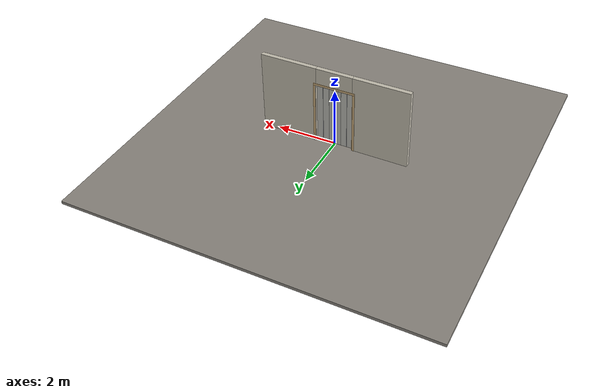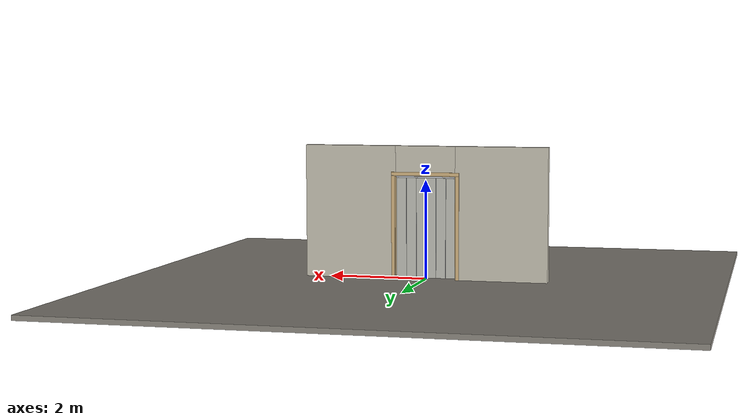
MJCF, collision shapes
<?xml version="1.0" ?>
<mujoco model="db0065_accordion_full">
  <compiler angle="radian" meshdir="../../hardware" texturedir="../../textures" autolimits="true" inertiafromgeom="false"/>
  <option timestep="0.002" integrator="implicitfast" cone="elliptic" impratio="10" noslip_iterations="3">
    <flag multiccd="enable"/>
  </option>
  <size memory="16M"/>
  <default>
    <geom condim="4" solref="0.005 1" solimp="0.95 0.99 0.001"/>
    <joint solreflimit="0.005 1" solimplimit="0.95 0.99 0.001"/>
    <tendon solreflimit="0.005 1"/>
    <equality solref="0.002 1"/>
  </default>
  <visual>
    <headlight ambient="0.4 0.4 0.4" diffuse="0.7 0.7 0.7" specular="0.2 0.2 0.2"/>
    <quality shadowsize="4096"/>
    <map znear="0.01" zfar="60"/>
  </visual>
  <asset>
    <mesh name="pull_1e5d69a91a" file="pull_1e5d69a91a.obj"/>
    <material name="mat_floor" rgba="0.55 0.53 0.5 1" specular="0.2" shininess="0.15" reflectance="0"/>
    <material name="mat_wall" rgba="0.78 0.76 0.7 1" specular="0.2" shininess="0.1" reflectance="0"/>
    <material name="mat_frame" rgba="0.82 0.7 0.5 1" specular="0.2" shininess="0.45" reflectance="0"/>
    <material name="mat_track" rgba="0.8 0.81 0.83 1" specular="0.8" shininess="0.6" reflectance="0.4"/>
    <material name="mat_hinge" rgba="0.65 0.66 0.68 1" specular="0.74" shininess="0.5" reflectance="0.36"/>
    <material name="mat_panel_0_0" rgba="0.75 0.75 0.72 1" specular="0.2" shininess="0.65" reflectance="0"/>
    <material name="mat_panel_0_1" rgba="0.75 0.75 0.72 1" specular="0.2" shininess="0.65" reflectance="0"/>
    <material name="mat_panel_0_2" rgba="0.75 0.75 0.72 1" specular="0.2" shininess="0.65" reflectance="0"/>
    <material name="mat_panel_0_3" rgba="0.75 0.75 0.72 1" specular="0.2" shininess="0.65" reflectance="0"/>
    <material name="mat_panel_0_4" rgba="0.75 0.75 0.72 1" specular="0.2" shininess="0.65" reflectance="0"/>
    <material name="mat_panel_0_5" rgba="0.75 0.75 0.72 1" specular="0.2" shininess="0.65" reflectance="0"/>
    <material name="mat_op_stainless" rgba="0.75 0.76 0.77 1" specular="0.8" shininess="0.65" reflectance="0.4"/>
    <texture name="skybox" type="skybox" builtin="gradient" rgb1="0.6 0.7 0.85" rgb2="0.9 0.92 0.95" width="256" height="256"/>
  </asset>
  <worldbody>
    <light name="sun" pos="1.5 -2.5 4" dir="-0.3 0.5 -0.8" directional="true" diffuse="0.8 0.8 0.8" specular="0.3 0.3 0.3" castshadow="true"/>
    <light name="fill" pos="-1.5 2.5 3" dir="0.3 -0.5 -0.7" directional="true" diffuse="0.35 0.35 0.4" castshadow="false"/>
    <camera name="robot_view" pos="0 -2.581563 1.766338" xyaxes="1 0 0 0 0.26963 0.962964" fovy="52"/>
    <camera name="far_view" pos="0 2.581563 1.766338" xyaxes="-1 0 0 0 -0.26963 0.962964" fovy="52"/>
    <camera name="iso" pos="1.961988 -2.168513 2.179388" xyaxes="0.741536 0.670913 0 -0.242917 0.268487 0.932151" fovy="46"/>
    <camera name="detail_handle" pos="0.7285 -0.866 1.28" xyaxes="0.97561 0.219512 0 -0.070934 0.315262 0.94635" fovy="38"/>
    <geom name="floor" type="box" size="6 6 0.05" pos="0 0 -0.05" material="mat_floor" group="0" contype="1" conaffinity="1" friction="0.8 0.005 0.0001" density="2400"/>
    <geom name="wall_left" type="box" size="0.94275 0.0725 1.35" pos="-1.55725 0 1.35" material="mat_wall" group="0" contype="1" conaffinity="1" friction="0.6 0.005 0.0001" density="800"/>
    <geom name="wall_right" type="box" size="0.94275 0.0725 1.35" pos="1.55725 0 1.35" material="mat_wall" group="0" contype="1" conaffinity="1" friction="0.6 0.005 0.0001" density="800"/>
    <geom name="wall_header" type="box" size="0.6145 0.0725 0.3065" pos="0 0 2.3935" material="mat_wall" group="0" contype="1" conaffinity="1" friction="0.6 0.005 0.0001" density="800"/>
    <geom name="jamb_hinge" type="box" size="0.0095 0.0725 1.0435" pos="-0.624 0 1.0435" material="mat_frame" group="0" contype="1" conaffinity="1" friction="0.6 0.005 0.0001" density="400"/>
    <geom name="jamb_strike" type="box" size="0.0095 0.0725 1.0435" pos="0.624 0 1.0435" material="mat_frame" group="0" contype="1" conaffinity="1" friction="0.6 0.005 0.0001" density="400"/>
    <geom name="stud_strike" type="box" size="0.015 0.0725 1.0435" pos="0.6485 0 1.0435" material="mat_wall" group="0" contype="1" conaffinity="1" friction="0.6 0.005 0.0001" density="500"/>
    <geom name="jamb_head" type="box" size="0.6485 0.0725 0.0095" pos="0.015 0 2.0965" material="mat_frame" group="0" contype="1" conaffinity="1" friction="0.6 0.005 0.0001" density="400"/>
    <geom name="head_stud" type="box" size="0.6485 0.0725 0.015" pos="0.015 0 2.121" material="mat_wall" group="0" contype="1" conaffinity="1" friction="0.6 0.005 0.0001" density="500"/>
    <geom name="casing_l_n" type="box" size="0.035 0.008 1.053" pos="-0.6635 -0.0805 1.0435" material="mat_frame" group="2" contype="0" conaffinity="0" density="400"/>
    <geom name="casing_r_n" type="box" size="0.035 0.008 1.053" pos="0.6635 -0.0805 1.0435" material="mat_frame" group="2" contype="0" conaffinity="0" density="400"/>
    <geom name="casing_h_n" type="box" size="0.6985 0.008 0.035" pos="0 -0.0805 2.136" material="mat_frame" group="2" contype="0" conaffinity="0" density="400"/>
    <geom name="casing_l_p" type="box" size="0.035 0.008 1.053" pos="-0.6635 0.0805 1.0435" material="mat_frame" group="2" contype="0" conaffinity="0" density="400"/>
    <geom name="casing_r_p" type="box" size="0.035 0.008 1.053" pos="0.6635 0.0805 1.0435" material="mat_frame" group="2" contype="0" conaffinity="0" density="400"/>
    <geom name="casing_h_p" type="box" size="0.6985 0.008 0.035" pos="0 0.0805 2.136" material="mat_frame" group="2" contype="0" conaffinity="0" density="400"/>
    <geom name="fold_track" type="box" size="0.6145 0.02 0.015" pos="0 0 2.072" material="mat_track" group="1" contype="0" conaffinity="0" density="2700"/>
    <site name="approach_point" pos="0 -1.5 0" quat="1 0 0 0" size="0.05" rgba="0.2 0.9 0.2 0.5" group="4"/>
    <site name="goal_point" pos="0 1.5 0" quat="1 0 0 0" size="0.05" rgba="0.2 0.9 0.2 0.5" group="4"/>
    <site name="door_plane_center" pos="0 0 1.0435" quat="1 0 0 0" size="0.02" rgba="0.2 0.9 0.2 0.5" group="4"/>
    <body name="panel_0_0" pos="-0.6145 0 0">
      <inertial pos="0.102676 0 1.040839" mass="7.584997" quat="0.499762 0.499762 -0.500238 0.500238" diaginertia="0.024422052 2.634686749 2.658926472"/>
      <joint name="panel_0_0_hinge" type="hinge" axis="0 0 -1" pos="0.035 0 0" limited="true" range="0 1.48353" damping="1.075796" frictionloss="7.378905" armature="0.02"/>
      <geom name="panel_0_0_slab" type="box" size="0.098 0.006 1.016" pos="0.103 0 1.036" material="mat_panel_0_0" group="0" contype="1" conaffinity="1" friction="0.35 0.005 0.0001" density="1"/>
      <geom name="panel_0_0_pivot_pin" type="cylinder" size="0.008 0.0105" pos="0.035 0 2.0525" material="mat_hinge" group="1" contype="0" conaffinity="0" density="7850"/>
      <body name="panel_0_1" pos="0.203 0 0">
        <inertial pos="0.000488 0.005971 1.036" mass="7.897257" quat="0.511063 -0.488686 0.511063 0.488686" diaginertia="0.000595789 2.6643993 2.664913943"/>
        <joint name="panel_0_1_hinge" type="hinge" axis="0 0 -1" pos="0 0.006 0" limited="true" range="-3.141593 0" damping="0.2" frictionloss="0.1" armature="0.005"/>
        <geom name="panel_0_1_slab" type="box" size="0.0995 0.006 1.016" pos="0.1015 0 1.036" material="mat_panel_0_1" group="0" contype="1" conaffinity="1" friction="0.35 0.005 0.0001" density="1"/>
        <geom name="panel_0_1_knuckle" type="cylinder" size="0.0045 1.006" pos="0 0.006 1.036" material="mat_hinge" group="1" contype="0" conaffinity="0" density="7850"/>
        <body name="panel_0_2" pos="0.203 0 0">
          <inertial pos="0.000488 -0.005971 1.036" mass="7.897257" quat="0.488686 -0.511063 0.488686 0.511063" diaginertia="0.000595789 2.6643993 2.664913943"/>
          <joint name="panel_0_2_hinge" type="hinge" axis="0 0 -1" pos="0 -0.006 0" limited="true" range="0 3.141593" damping="0.2" frictionloss="0.1" armature="0.005"/>
          <geom name="panel_0_2_slab" type="box" size="0.0995 0.006 1.016" pos="0.1015 0 1.036" material="mat_panel_0_2" group="0" contype="1" conaffinity="1" friction="0.35 0.005 0.0001" density="1"/>
          <geom name="panel_0_2_knuckle" type="cylinder" size="0.0045 1.006" pos="0 -0.006 1.036" material="mat_hinge" group="1" contype="0" conaffinity="0" density="7850"/>
          <body name="panel_0_3" pos="0.203 0 0">
            <inertial pos="0.000488 0.005971 1.036" mass="7.897257" quat="0.511063 -0.488686 0.511063 0.488686" diaginertia="0.000595789 2.6643993 2.664913943"/>
            <joint name="panel_0_3_hinge" type="hinge" axis="0 0 -1" pos="0 0.006 0" limited="true" range="-3.141593 0" damping="0.2" frictionloss="0.1" armature="0.005"/>
            <geom name="panel_0_3_slab" type="box" size="0.0995 0.006 1.016" pos="0.1015 0 1.036" material="mat_panel_0_3" group="0" contype="1" conaffinity="1" friction="0.35 0.005 0.0001" density="1"/>
            <geom name="panel_0_3_knuckle" type="cylinder" size="0.0045 1.006" pos="0 0.006 1.036" material="mat_hinge" group="1" contype="0" conaffinity="0" density="7850"/>
            <body name="panel_0_4" pos="0.203 0 0">
              <inertial pos="0.000488 -0.005971 1.036" mass="7.897257" quat="0.488686 -0.511063 0.488686 0.511063" diaginertia="0.000595789 2.6643993 2.664913943"/>
              <joint name="panel_0_4_hinge" type="hinge" axis="0 0 -1" pos="0 -0.006 0" limited="true" range="0 3.141593" damping="0.2" frictionloss="0.1" armature="0.005"/>
              <geom name="panel_0_4_slab" type="box" size="0.0995 0.006 1.016" pos="0.1015 0 1.036" material="mat_panel_0_4" group="0" contype="1" conaffinity="1" friction="0.35 0.005 0.0001" density="1"/>
              <geom name="panel_0_4_knuckle" type="cylinder" size="0.0045 1.006" pos="0 -0.006 1.036" material="mat_hinge" group="1" contype="0" conaffinity="0" density="7850"/>
              <body name="panel_0_5" pos="0.203 0 0">
                <inertial pos="0.045959 -0.013211 1.024909" mass="8.405571" quat="0.589115 0.387909 -0.591218 0.391064" diaginertia="0.047456623 1.97343408 2.018936692"/>
                <joint name="panel_0_5_hinge" type="hinge" axis="0 0 -1" pos="0 0.006 0" limited="true" range="-3.141593 0" damping="0.2" frictionloss="0.1" armature="0.005"/>
                <geom name="panel_0_5_slab" type="box" size="0.103 0.006 1.016" pos="0.105 0 1.036" material="mat_panel_0_5" group="0" contype="1" conaffinity="1" friction="0.35 0.005 0.0001" density="1"/>
                <geom name="panel_0_5_knuckle" type="cylinder" size="0.0045 1.006" pos="0 0.006 1.036" material="mat_hinge" group="1" contype="0" conaffinity="0" density="7850"/>
                <geom name="panel_0_5_pull_n" type="mesh" mesh="pull_1e5d69a91a" pos="0.148 -0.006 1" quat="0.707107 0.707107 0 0" material="mat_op_stainless" group="1" contype="0" conaffinity="0" density="3000"/>
                <geom name="panel_0_5_pull_col_n" type="capsule" size="0.0095 0.08" pos="0.148 -0.066 1" material="mat_op_stainless" group="3" contype="1" conaffinity="1" rgba="0.8 0.3 0.3 0.25" friction="0.7 0.01 0.0001" density="3000"/>
                <site name="panel_0_5_pull_grip_n" pos="0.148 -0.066 1" quat="1 0 0 0" size="0.012" rgba="0.2 0.9 0.2 0.5" group="4"/>
              </body>
            </body>
          </body>
        </body>
      </body>
    </body>
  </worldbody>
  <equality>
    <joint name="panel_0_1_couple" joint1="panel_0_1_hinge" joint2="panel_0_0_hinge" polycoef="0 -2 0 0 0" active="true"/>
    <joint name="panel_0_2_couple" joint1="panel_0_2_hinge" joint2="panel_0_0_hinge" polycoef="0 2 0 0 0" active="true"/>
    <joint name="panel_0_3_couple" joint1="panel_0_3_hinge" joint2="panel_0_0_hinge" polycoef="0 -2 0 0 0" active="true"/>
    <joint name="panel_0_4_couple" joint1="panel_0_4_hinge" joint2="panel_0_0_hinge" polycoef="0 2 0 0 0" active="true"/>
    <joint name="panel_0_5_couple" joint1="panel_0_5_hinge" joint2="panel_0_0_hinge" polycoef="0 -2 0 0 0" active="true"/>
  </equality>
  <sensor>
    <jointpos name="panel_0_0_hinge_pos" joint="panel_0_0_hinge"/>
    <jointvel name="panel_0_0_hinge_vel" joint="panel_0_0_hinge"/>
    <jointpos name="panel_0_1_hinge_pos" joint="panel_0_1_hinge"/>
    <jointvel name="panel_0_1_hinge_vel" joint="panel_0_1_hinge"/>
    <jointpos name="panel_0_2_hinge_pos" joint="panel_0_2_hinge"/>
    <jointvel name="panel_0_2_hinge_vel" joint="panel_0_2_hinge"/>
    <jointpos name="panel_0_3_hinge_pos" joint="panel_0_3_hinge"/>
    <jointvel name="panel_0_3_hinge_vel" joint="panel_0_3_hinge"/>
    <jointpos name="panel_0_4_hinge_pos" joint="panel_0_4_hinge"/>
    <jointvel name="panel_0_4_hinge_vel" joint="panel_0_4_hinge"/>
    <jointpos name="panel_0_5_hinge_pos" joint="panel_0_5_hinge"/>
    <jointvel name="panel_0_5_hinge_vel" joint="panel_0_5_hinge"/>
  </sensor>
</mujoco>
